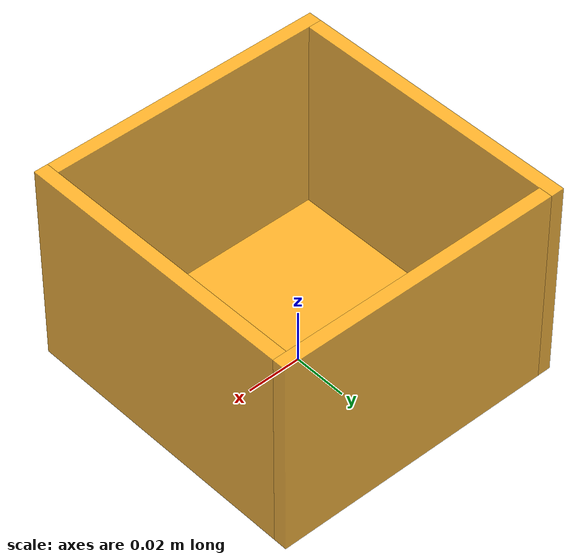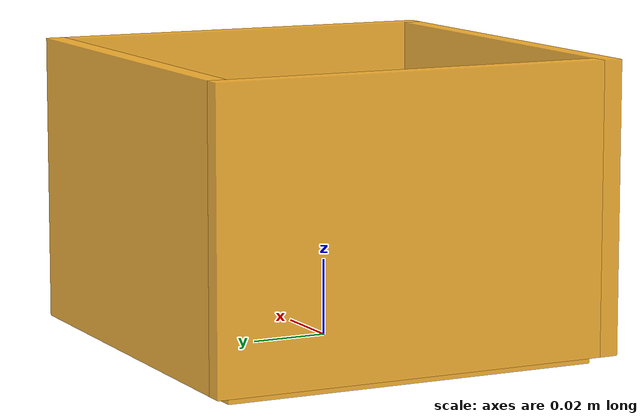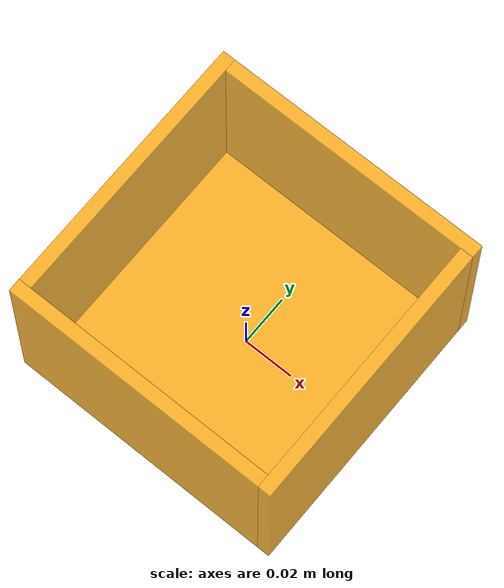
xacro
<?xml version="1.0" ?>

<robot name="box" xmlns:xacro="http://ros.org/wiki/xacro">
    <xacro:include filename="$(find custom_robot_sim)/urdf/inertial_macros.urdf.xacro" />
    <xacro:include filename="$(find custom_robot_sim)/urdf/materials.urdf.xacro" />

    <xacro:property name="wall_length" value="0.105" />
    <xacro:property name="wall_width" value="0.005" />
    <xacro:property name="wall_height" value="0.075" />
    <xacro:property name="wall_z_offset" value="${wall_height/2}" />
    <xacro:property name="wall_x_offset" value="${0.0025}" />
    <xacro:property name="wall_y_offset" value="${0.100/2 + 0.0025}" />

    <xacro:macro name="box_wall" params="link_name">
        <link name="${link_name}">
            <visual>
                <origin xyz="0 0 0" rpy="0 0 0"/>
                <geometry>
                    <box size="${wall_length} ${wall_width} ${wall_height}"/>
                </geometry>
                <material name="orange"/>
            </visual>
            <collision>
                <origin xyz="0 0 0" rpy="0 0 0"/>
                <geometry>
                    <box size="${wall_length} ${wall_width} ${wall_height}"/>
                </geometry>
            </collision>
            <xacro:inertial_box length="${wall_length}" width="${wall_width}" height="${wall_height}" density="${pla_density}">
                <origin xyz="0 0 0" rpy="0 0 0"/>
            </xacro:inertial_box>
        </link>
    </xacro:macro>

    <link name="box_base_link">
        <visual>
            <origin xyz="0 0 0" rpy="0 0 0"/>
            <geometry>
                <box size="0.1 0.1 0.005"/>
            </geometry>
            <material name="orange"/>
        </visual>
        <collision>
            <origin xyz="0 0 0" rpy="0 0 0"/>
            <geometry>
                <box size="0.1 0.1 0.005"/>
            </geometry>
        </collision>
        <xacro:inertial_box length="0.1" width="0.1" height="0.005" density="${pla_density}">
            <origin xyz="0 0 0" rpy="0 0 0"/>
        </xacro:inertial_box>
    </link>

    <joint name="wall_1_joint" type="fixed">
        <parent link="box_base_link"/>
        <child link="wall_1_link" />
        <origin xyz="${wall_x_offset} ${wall_y_offset} ${wall_z_offset}" rpy="0 0 0"/>
    </joint>

    <xacro:box_wall link_name="wall_1_link"/>

    <joint name="wall_2_joint" type="fixed">
        <parent link="box_base_link"/>
        <child link="wall_2_link" />
        <origin xyz="${wall_y_offset} -${wall_x_offset} ${wall_z_offset}" rpy="0 0 ${pi/2}"/>
    </joint>

    <xacro:box_wall link_name="wall_2_link"/>

    <joint name="wall_3_joint" type="fixed">
        <parent link="box_base_link"/>
        <child link="wall_3_link" />
        <origin xyz="-${wall_x_offset} -${wall_y_offset} ${wall_z_offset}" rpy="0 0 0"/>
    </joint>

    <xacro:box_wall link_name="wall_3_link"/>

    <joint name="wall_4_joint" type="fixed">
        <parent link="box_base_link"/>
        <child link="wall_4_link" />
        <origin xyz="-${wall_y_offset} ${wall_x_offset} ${wall_z_offset}" rpy="0 0 ${pi/2}"/>
    </joint>

    <xacro:box_wall link_name="wall_4_link"/>

</robot>

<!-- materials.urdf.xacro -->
<robot name="xacro_macros" xmlns:xacro="http://ros.org/wiki/xacro">
    <xacro:property name="pla_density" value="600" />
    <xacro:property name="aluminium_density" value="2700" />

    <material name="blue">
        <color rgba="0 0 0.8 0.8"/>
    </material>

    <material name="green">
        <color rgba="0 ${145/255} ${29/255} 0.8"/>
    </material>

    <material name="orange">
        <color rgba="${255/255} ${165/255} 0.0 0.8"/>
    </material>

    <material name="silver">
        <color rgba="${169/255} ${172/255} ${182/255} 1.0"/>
    </material>

    <material name="black">
        <color rgba="${0/255} ${0/255} ${0/255} 1.0"/>
    </material>

</robot>
